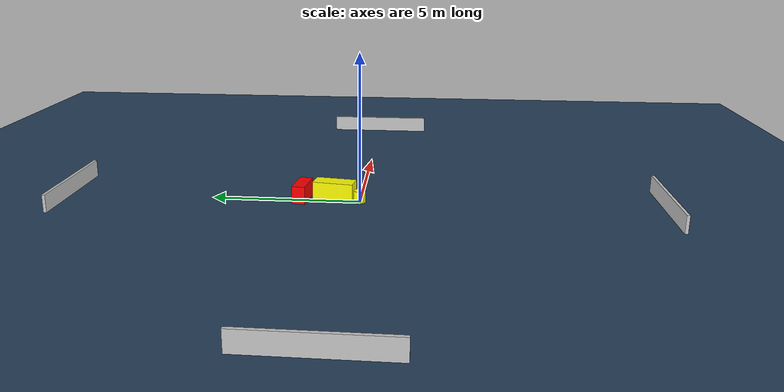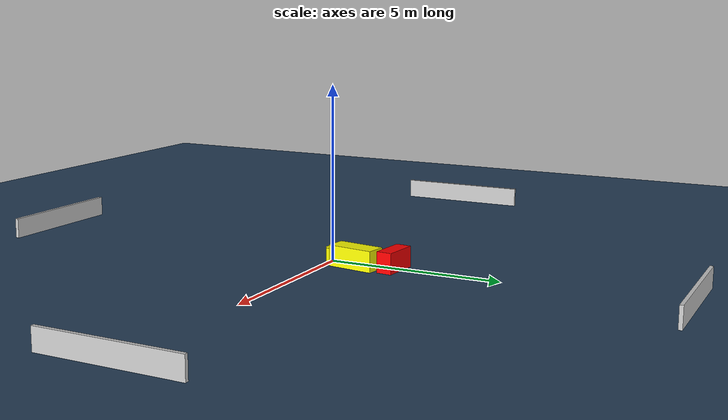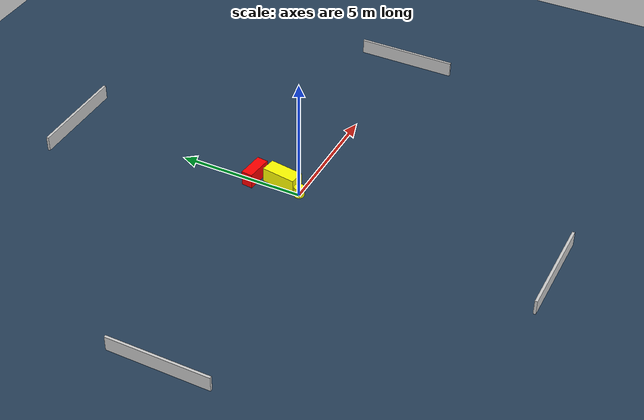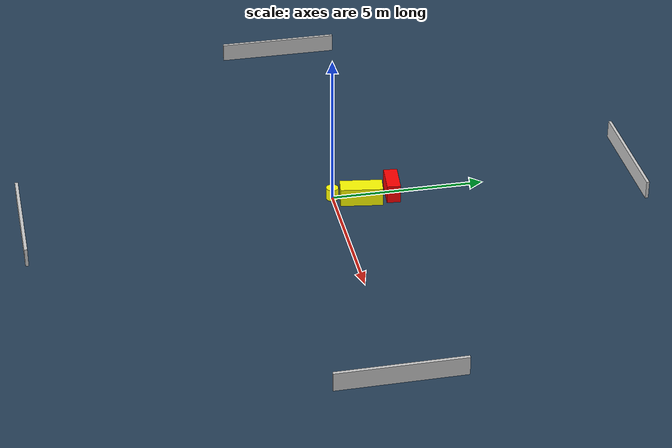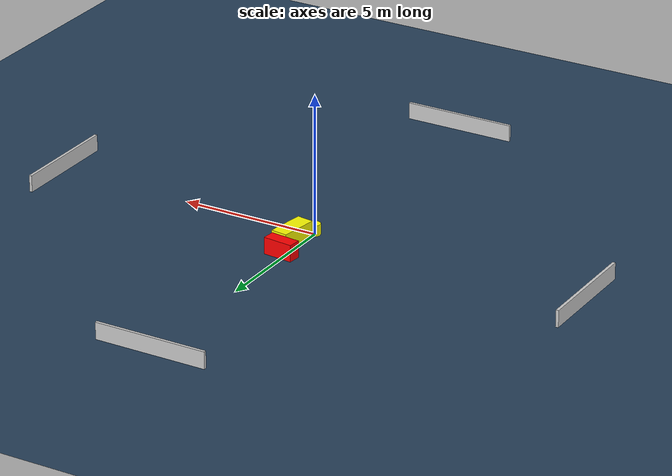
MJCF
<?xml version="1.0" ?>
<mujoco model="generated_environment">
  <option timestep="0.01" integrator="RK4" cone="elliptic"/>
  <default>
    <geom density="1"/>
  </default>
  <asset>
    <texture builtin="gradient" height="3072" name="skybox" rgb1="0.3 0.5 0.7" rgb2="0 0 0" type="skybox" width="512"/>
    <texture builtin="checker" height="300" name="groundplane" rgb1="0.2 0.3 0.4" rgb2="0.1 0.2 0.3" type="2d" width="300"/>
    <material name="groundplane" reflectance="0.2" texrepeat="5 5" texture="groundplane"/>
  </asset>
  <worldbody>
    <light dir="0 0 -1" directional="true" pos="0 0 1.5"/>
    <geom condim="3" friction="0.5 0.005 0.001" material="groundplane" name="floor" pos="0 0 0" size="0 0 0.05" type="plane"/>
    <body name="walls">
      <geom name="wall_1" condim="4" pos="-10.0 0.0 0.3" rgba="0.800000011920929 0.800000011920929 0.800000011920929 1.0" size="0.05 2.0 0.3" type="box"/>
      <geom name="wall_2" condim="4" pos="10.0 0.0 0.3" rgba="0.800000011920929 0.800000011920929 0.800000011920929 1.0" size="0.05 2.0 0.3" type="box"/>
      <geom name="wall_3" condim="4" pos="0.0 -10.0 0.3" rgba="0.800000011920929 0.800000011920929 0.800000011920929 1.0" size="2.0 0.05 0.3" type="box"/>
      <geom name="wall_4" condim="4" pos="0.0 10.0 0.3" rgba="0.800000011920929 0.800000011920929 0.800000011920929 1.0" size="2.0 0.05 0.3" type="box"/>
    </body>
    <body name="robot">
      <joint name="joint_x" type="slide" pos="0 0 0" axis="1 0 0"/>
      <joint name="joint_y" type="slide" pos="0 0 0" axis="0 1 0"/>
      <geom name="robot" type="cylinder" pos="0.0 0.0 0.2" size="0.2 0.2 0.0" mass="5.0" friction="1.0 0.005 0.0001" condim="4" rgba="1.0 1.0 0.0 1.0"/>
    </body>
    <body name="obstacle_1_movable">
      <geom name="obstacle_1_movable" condim="4" pos="0.34359308950236706 0.8870141170610606 0.3" euler="0 0 261.58471268374063" friction="0.0 0.005 0.001" rgba="1.0 1.0 0.0 1.0" size="0.6869361354918933 0.29756882941025925 0.3" type="box" mass="0.1"/>
      <joint type="free"/>
    </body>
    <body name="obstacle_2_static">
      <geom name="obstacle_2_static" condim="4" pos="0.11600996659970877 1.9547798637579759 0.3" euler="0 0 264.030001558291" friction="0.0 0.005 0.001" rgba="1.0 0.0 0.0 1.0" size="0.2217249982611665 0.5340847724172356 0.3" type="box"/>
    </body>
  </worldbody>
  <actuator>
    <motor name="actuator_x" joint="joint_x" gear="1" ctrlrange="-1 1"/>
    <motor name="actuator_y" joint="joint_y" gear="1" ctrlrange="-1 1"/>
  </actuator>
</mujoco>
